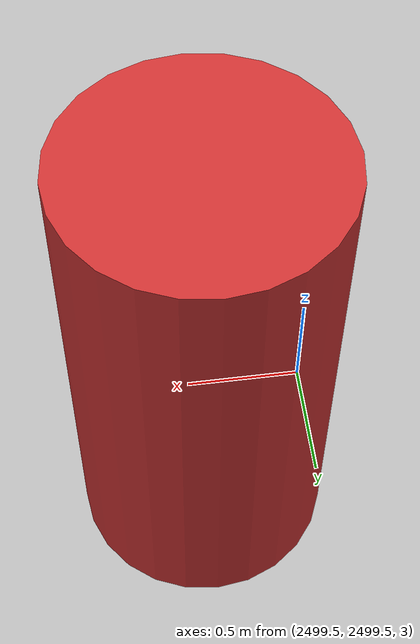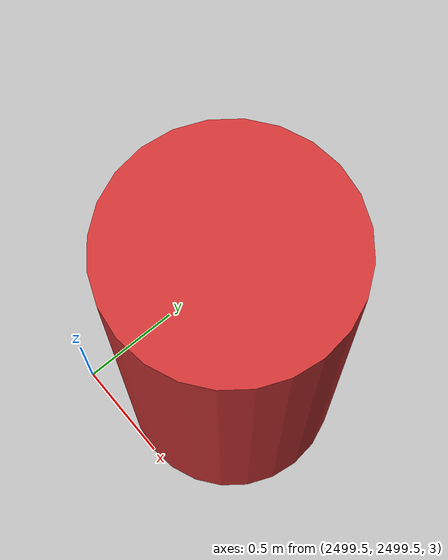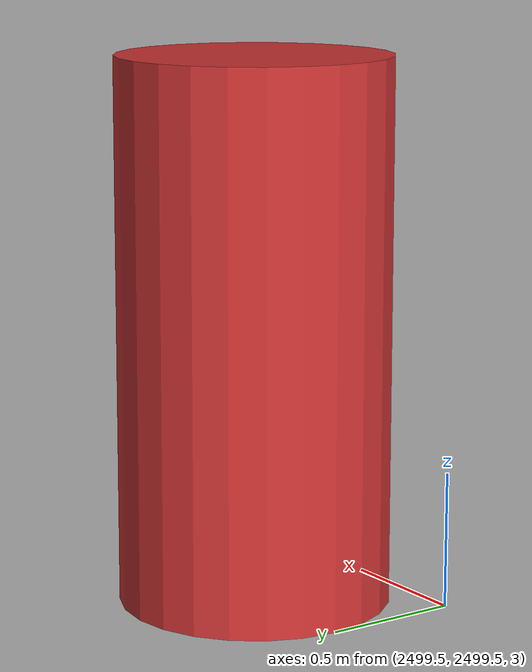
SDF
<?xml version="1.0" ?>

<sdf version="1.9">
  <world name="guanabra_bay">

    <physics name="4ms" type="ode">
      <max_step_size>0.05</max_step_size>  <!-- Reduzir step size -->
      <real_time_factor>1</real_time_factor>  <!-- Definir fator realista -->
      <ode>
        <solver>
          <type>quick</type>
          <island_threads>4</island_threads>
          <min_step_size>0.005</min_step_size>
          <sor>1.0</sor>
          <iters>50</iters>
        </solver>
        <constraints>
          <cfm>1e-5</cfm>
          <erp>0.2</erp>
          <contact_max_correcting_vel>100.0</contact_max_correcting_vel>
          <contact_surface_layer>0.001</contact_surface_layer>
        </constraints>
        <!-- Adicionar configurações de estabilidade -->

      </ode>
    </physics>
    <gui fullscreen="0">

      <!-- 3D scene -->
      <plugin filename="MinimalScene" name="3D View">
        <gz-gui>
          <title>3D View</title>
          <property type="bool" key="showTitleBar">false</property>
          <property type="string" key="state">docked</property>
        </gz-gui>

        <engine>ogre2</engine>
        <scene>scene</scene>
        <ambient_light>0.4 0.4 0.4</ambient_light>
        <background_color>0.8 0.8 0.8</background_color>
        <camera_pose>2500 2500 13.2 0 0.25 2.94</camera_pose>
        <camera_clip>
          <near>2</near>
          <far>5000</far>
        </camera_clip>
      </plugin>

      <!-- Plugins that add functionality to the scene -->
      <plugin filename="EntityContextMenuPlugin" name="Entity context menu">
        <gz-gui>
          <property key="state" type="string">floating</property>
          <property key="width" type="double">5</property>
          <property key="height" type="double">5</property>
          <property key="showTitleBar" type="bool">false</property>
        </gz-gui>
      </plugin>
      <plugin filename="GzSceneManager" name="Scene Manager">
        <gz-gui>
          <property key="resizable" type="bool">false</property>
          <property key="width" type="double">5</property>
          <property key="height" type="double">5</property>
          <property key="state" type="string">floating</property>
          <property key="showTitleBar" type="bool">false</property>
        </gz-gui>
      </plugin>
      <plugin filename="InteractiveViewControl" name="Interactive view control">
        <gz-gui>
          <property key="resizable" type="bool">false</property>
          <property key="width" type="double">5</property>
          <property key="height" type="double">5</property>
          <property key="state" type="string">floating</property>
          <property key="showTitleBar" type="bool">false</property>
        </gz-gui>
      </plugin>
      <plugin filename="CameraTracking" name="Camera Tracking">
        <gz-gui>
          <property key="resizable" type="bool">false</property>
          <property key="width" type="double">5</property>
          <property key="height" type="double">5</property>
          <property key="state" type="string">floating</property>
          <property key="showTitleBar" type="bool">false</property>
        </gz-gui>
      </plugin>
      <plugin filename="MarkerManager" name="Marker manager">
        <gz-gui>
          <property key="resizable" type="bool">false</property>
          <property key="width" type="double">5</property>
          <property key="height" type="double">5</property>
          <property key="state" type="string">floating</property>
          <property key="showTitleBar" type="bool">false</property>
        </gz-gui>
      </plugin>
      <plugin filename="SelectEntities" name="Select Entities">
        <gz-gui>
          <anchors target="Select entities">
            <line own="right" target="right"/>
            <line own="top" target="top"/>
          </anchors>
          <property key="resizable" type="bool">false</property>
          <property key="width" type="double">5</property>
          <property key="height" type="double">5</property>
          <property key="state" type="string">floating</property>
          <property key="showTitleBar" type="bool">false</property>
        </gz-gui>
      </plugin>
      <plugin filename="VisualizationCapabilities" name="Visualization Capabilities">
        <gz-gui>
          <property key="resizable" type="bool">false</property>
          <property key="width" type="double">5</property>
          <property key="height" type="double">5</property>
          <property key="state" type="string">floating</property>
          <property key="showTitleBar" type="bool">false</property>
        </gz-gui>
      </plugin>

      <!-- World control -->
      <plugin filename="WorldControl" name="World control">
        <gz-gui>
          <title>World control</title>
          <property type="bool" key="showTitleBar">false</property>
          <property type="bool" key="resizable">false</property>
          <property type="double" key="height">72</property>
          <property type="double" key="width">121</property>
          <property type="double" key="z">1</property>

          <property type="string" key="state">floating</property>
          <anchors target="3D View">
            <line own="left" target="left"/>
            <line own="bottom" target="bottom"/>
          </anchors>
        </gz-gui>

        <play_pause>true</play_pause>
        <step>true</step>
        <start_paused>true</start_paused>
        <use_event>true</use_event>

      </plugin>

      <!-- World statistics -->
      <plugin filename="WorldStats" name="World stats">
        <gz-gui>
          <title>World stats</title>
          <property type="bool" key="showTitleBar">false</property>
          <property type="bool" key="resizable">false</property>
          <property type="double" key="height">110</property>
          <property type="double" key="width">290</property>
          <property type="double" key="z">1</property>

          <property type="string" key="state">floating</property>
          <anchors target="3D View">
            <line own="right" target="right"/>
            <line own="bottom" target="bottom"/>
          </anchors>
        </gz-gui>

        <sim_time>true</sim_time>
        <real_time>true</real_time>
        <real_time_factor>true</real_time_factor>
        <iterations>true</iterations>
      </plugin>

      <!-- Translate / rotate -->
      <plugin filename="TransformControl" name="Transform control">
        <gz-gui>
          <property key="resizable" type="bool">false</property>
          <property key="x" type="double">0</property>
          <property key="y" type="double">50</property>
          <property key="width" type="double">250</property>
          <property key="height" type="double">50</property>
          <property key="state" type="string">floating</property>
          <property key="showTitleBar" type="bool">false</property>
          <property key="cardBackground" type="string">#777777</property>
        </gz-gui>

        <!-- disable legacy features used to connect this plugin to GzScene3D -->
        <legacy>false</legacy>
      </plugin>

      <!-- Inspector -->
      <plugin filename="ComponentInspector" name="Component inspector">
        <gz-gui>
          <property type="string" key="state">docked_collapsed</property>
        </gz-gui>
      </plugin>

      <!-- Entity tree -->
      <plugin filename="EntityTree" name="Entity tree">
        <gz-gui>
          <property type="string" key="state">docked_collapsed</property>
        </gz-gui>
      </plugin>

      <!-- View angle -->
      <plugin filename="ViewAngle" name="View angle">
        <gz-gui>
          <property type="string" key="state">docked_collapsed</property>
        </gz-gui>

        <!-- disable legacy features used to connect this plugin to GzScene3D -->
        <legacy>false</legacy>
      </plugin>

    </gui>

    <plugin
      filename="gz-sim-physics-system"
      name="gz::sim::systems::Physics">
    </plugin>
    <plugin
      filename="gz-sim-user-commands-system"
      name="gz::sim::systems::UserCommands">
    </plugin>
    <plugin
      filename="gz-sim-sensors-system"
      name="gz::sim::systems::Sensors">
      <render_engine>ogre2</render_engine>
      <disable_on_drained_battery>true</disable_on_drained_battery>
    </plugin>
    <plugin
      filename="gz-sim-imu-system"
      name="gz::sim::systems::Imu">
    </plugin>
    <plugin
      filename="gz-sim-magnetometer-system"
      name="gz::sim::systems::Magnetometer">
    </plugin>
    <plugin
      filename="gz-sim-scene-broadcaster-system"
      name="gz::sim::systems::SceneBroadcaster">
    </plugin>
    <plugin
      filename="gz-sim-contact-system"
      name="gz::sim::systems::Contact">
    </plugin>
    <plugin
      filename="gz-sim-navsat-system"
      name="gz::sim::systems::NavSat">
    </plugin>

    <plugin filename="gz-sim-wind-effects-system"
            name="gz::sim::systems::WindEffects">
      <force_approximation_scaling_factor>0.5</force_approximation_scaling_factor>
      <horizontal>
        <magnitude>
          <time_for_rise>10</time_for_rise>
          <sin>
            <amplitude_percent>0.05</amplitude_percent>
            <period>60</period>
          </sin>
          <noise type="gaussian">
           <mean>0</mean>
           <stddev>0.0002</stddev>
          </noise>
        </magnitude>
        <direction>
          <time_for_rise>30</time_for_rise>
          <sin>
            <amplitude>5</amplitude>
            <period>20</period>
          </sin>
          <noise type="gaussian">
           <mean>0</mean>
           <stddev>0.03</stddev>
          </noise>
        </direction>
      </horizontal>
      <vertical>
        <noise type="gaussian">
         <mean>0</mean>
         <stddev>0.03</stddev>
        </noise>
      </vertical>
    </plugin>

    <include>
      <pose>2500 2500 0 0 0 0</pose>
      <uri>model://waves</uri>
    </include>
    <model name="fixed_cylinder">
      <pose>2500 2500 4 0 0 0</pose>
      <static>true</static>
      <link name="cylinder_link">
        <visual name="cylinder_visual">
          <geometry>
            <cylinder>
              <radius>0.5</radius>
              <length>2.0</length>
            </cylinder>
          </geometry>
          <material>
            <ambient>0.8 0.2 0.2 1</ambient>
            <diffuse>0.8 0.2 0.2 1</diffuse>
            <specular>0.5 0.5 0.5 1</specular>
          </material>
        </visual>
        <collision name="cylinder_collision">
          <geometry>
            <cylinder>
              <radius>0.5</radius>
              <length>2.0</length>
            </cylinder>
          </geometry>
        </collision>
      </link>
    </model>

    <wind>
      <linear_velocity>0.4 0.3 0</linear_velocity>
    </wind>

    <scene>
      <shadows>false</shadows>
      <grid>false</grid>
      <ambient>0.6 0.6 0.6</ambient>
      <background>0.8 0.8 0.8</background>
    </scene>

    <!-- Estimated latitude/longitude of sydneyregatta
         from satellite imagery -->
    <spherical_coordinates>
      <surface_model>EARTH_WGS84</surface_model>
      <world_frame_orientation>ENU</world_frame_orientation>
      <latitude_deg>-33.724223</latitude_deg>
      <longitude_deg>150.679736</longitude_deg>
      <elevation>0.0</elevation>
      <heading_deg>0.0</heading_deg>
    </spherical_coordinates>

    <light type="directional" name="sun">
      <cast_shadows>false</cast_shadows>
      <pose>0 0 10 0 0 0</pose>
      <diffuse>0.8 0.8 0.8 1</diffuse>
      <specular>0.2 0.2 0.2 1</specular>
      <attenuation>
        <range>5000</range>
        <constant>0.9</constant>
        <linear>0.01</linear>
        <quadratic>0.001</quadratic>
      </attenuation>
      <direction>-0.5 0.1 -0.9</direction>
    </light>

  </world>
</sdf>

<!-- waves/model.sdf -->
<sdf version="1.6">
  <model name="waves">
    <static>true</static>
    <link name="link">
      <visual name= "wave_visual">
        <geometry>
          <mesh>
            <uri>meshes/mesh.dae</uri>
          </mesh>
        </geometry>
        <plugin
            filename="libWaveVisual.so"
            name="ignition::gazebo::systems::WaveVisual">
          <shader>
            <vertex>materials/programs/GerstnerWaves_vs_330.glsl</vertex>
            <fragment>materials/programs/GerstnerWaves_fs_330.glsl</fragment>
          </shader>
          <wavefield>
            <size>1000 1000</size>
            <cell_count>50 50</cell_count>
            <wave>
              <model>PMS</model>
              <period>5</period>
              <number>3</number>
              <scale>5.1</scale>
              <gain>0.3</gain>
              <direction>1 0</direction>
              <angle>0.4</angle>
              <tau>2.0</tau>
              <amplitude>0.0</amplitude>
              <steepness>0.0</steepness>
            </wave>
          </wavefield>
        </plugin>
        <visibility_flags>8</visibility_flags>
      </visual>
    </link>
  </model>
</sdf>
